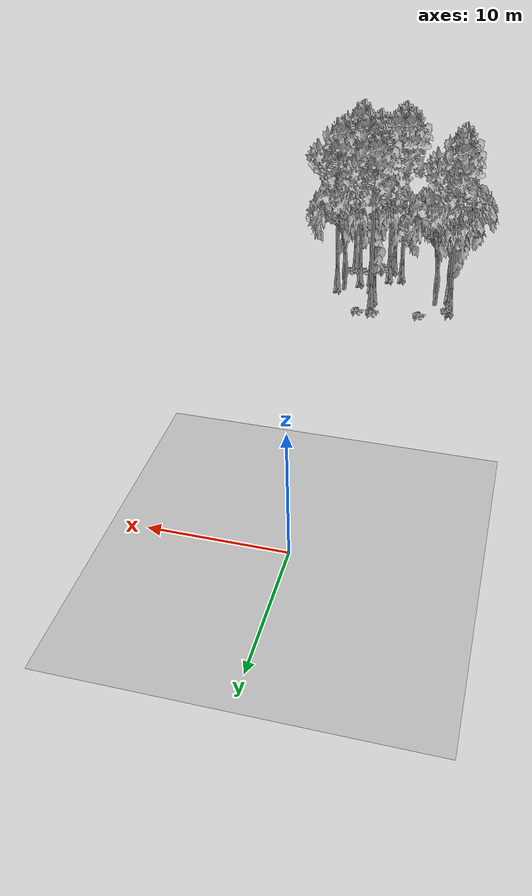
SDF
<sdf version="1.7">
 <world name="default">
  <model name="ground_plane">
   <static>1</static>
   <link name="link">
    <collision name="collision">
     <pose>-50 0 0 0 -0 0</pose>
     <geometry><plane><normal>0 0 1</normal><size>80 80</size></plane></geometry>
     <surface><contact><ode><min_depth>0.01</min_depth><max_vel>0</max_vel></ode></contact></surface>
    </collision>
    <visual name="grass">
     <cast_shadows>0</cast_shadows>
     <geometry>
      <mesh>
       <scale>0.46714285714285714 0.46714285714285714 0.1</scale>
       <uri>file://grass_plane/meshes/grass_plane.dae</uri>
      </mesh>
     </geometry>
    </visual>
   </link>
  </model>
  <model name="Tree 130">
   <static>1</static>
   <pose>-6.377897747362773 -33.0614742757969 0 1.57079 -0 0</pose>
   <link name="link">
    <collision name="collision">
     <geometry><mesh><scale>3.5 5 3.5</scale><uri>model://tree_9/meshes/tree_9.obj</uri></mesh></geometry>
    </collision>
    <visual name="visual">
     <geometry><mesh><scale>3.5 5 3.5</scale><uri>model://tree_9/meshes/tree_9.obj</uri></mesh></geometry>
    </visual>
   </link>
  </model>
  <model name="Tree 139">
   <static>1</static>
   <pose>0.8280871402998287 -33.56340187942965 0 1.57079 -0 0</pose>
   <link name="link">
    <collision name="collision">
     <geometry><mesh><scale>3.5 5 3.5</scale><uri>model://tree_9/meshes/tree_9.obj</uri></mesh></geometry>
    </collision>
    <visual name="visual">
     <geometry><mesh><scale>3.5 5 3.5</scale><uri>model://tree_9/meshes/tree_9.obj</uri></mesh></geometry>
    </visual>
   </link>
  </model>
  <model name="Tree 178">
   <static>1</static>
   <pose>-0.07795094631124755 -39.66457495620024 0 1.57079 -0 0</pose>
   <link name="link">
    <collision name="collision">
     <geometry><mesh><scale>3.5 5 3.5</scale><uri>model://tree_9/meshes/tree_9.obj</uri></mesh></geometry>
    </collision>
    <visual name="visual">
     <geometry><mesh><scale>3.5 5 3.5</scale><uri>model://tree_9/meshes/tree_9.obj</uri></mesh></geometry>
    </visual>
   </link>
  </model>
  <model name="Tree 202">
   <static>1</static>
   <pose>-1.0511369377822035 -38.25991164596257 0 1.57079 -0 0</pose>
   <link name="link">
    <collision name="collision">
     <geometry><mesh><scale>3.5 5 3.5</scale><uri>model://tree_9/meshes/tree_9.obj</uri></mesh></geometry>
    </collision>
    <visual name="visual">
     <geometry><mesh><scale>3.5 5 3.5</scale><uri>model://tree_9/meshes/tree_9.obj</uri></mesh></geometry>
    </visual>
   </link>
  </model>
  <model name="Tree 257">
   <static>1</static>
   <pose>2.7378826099276026 -36.57014905535447 0 1.57079 -0 0</pose>
   <link name="link">
    <collision name="collision">
     <geometry><mesh><scale>3.5 5 3.5</scale><uri>model://tree_9/meshes/tree_9.obj</uri></mesh></geometry>
    </collision>
    <visual name="visual">
     <geometry><mesh><scale>3.5 5 3.5</scale><uri>model://tree_9/meshes/tree_9.obj</uri></mesh></geometry>
    </visual>
   </link>
  </model>
  <model name="Tree 288">
   <static>1</static>
   <pose>4.654760357649913 -35.04532980832681 0 1.57079 -0 0</pose>
   <link name="link">
    <collision name="collision">
     <geometry><mesh><scale>3.5 5 3.5</scale><uri>model://tree_9/meshes/tree_9.obj</uri></mesh></geometry>
    </collision>
    <visual name="visual">
     <geometry><mesh><scale>3.5 5 3.5</scale><uri>model://tree_9/meshes/tree_9.obj</uri></mesh></geometry>
    </visual>
   </link>
  </model>
  <model name="Tree 357">
   <static>1</static>
   <pose>0.8275773958869763 -32.07161638440657 0 1.57079 -0 0</pose>
   <link name="link">
    <collision name="collision">
     <geometry><mesh><scale>3.5 5 3.5</scale><uri>model://tree_9/meshes/tree_9.obj</uri></mesh></geometry>
    </collision>
    <visual name="visual">
     <geometry><mesh><scale>3.5 5 3.5</scale><uri>model://tree_9/meshes/tree_9.obj</uri></mesh></geometry>
    </visual>
   </link>
  </model>
  <model name="Tree 421">
   <static>1</static>
   <pose>1.7865756302840623 -37.137464410207045 0 1.57079 -0 0</pose>
   <link name="link">
    <collision name="collision">
     <geometry><mesh><scale>3.5 5 3.5</scale><uri>model://tree_9/meshes/tree_9.obj</uri></mesh></geometry>
    </collision>
    <visual name="visual">
     <geometry><mesh><scale>3.5 5 3.5</scale><uri>model://tree_9/meshes/tree_9.obj</uri></mesh></geometry>
    </visual>
   </link>
  </model>
  <model name="Tree 465">
   <static>1</static>
   <pose>1.4898975217164008 -35.72123643416438 0 1.57079 -0 0</pose>
   <link name="link">
    <collision name="collision">
     <geometry><mesh><scale>3.5 5 3.5</scale><uri>model://tree_9/meshes/tree_9.obj</uri></mesh></geometry>
    </collision>
    <visual name="visual">
     <geometry><mesh><scale>3.5 5 3.5</scale><uri>model://tree_9/meshes/tree_9.obj</uri></mesh></geometry>
    </visual>
   </link>
  </model>
  <model name="Tree 497">
   <static>1</static>
   <pose>0.12948457581568817 -37.98725501332355 0 1.57079 -0 0</pose>
   <link name="link">
    <collision name="collision">
     <geometry><mesh><scale>3.5 5 3.5</scale><uri>model://tree_9/meshes/tree_9.obj</uri></mesh></geometry>
    </collision>
    <visual name="visual">
     <geometry><mesh><scale>3.5 5 3.5</scale><uri>model://tree_9/meshes/tree_9.obj</uri></mesh></geometry>
    </visual>
   </link>
  </model>
  <model name="Tree 506">
   <static>1</static>
   <pose>3.7221538579052833 -39.200286507392825 0 1.57079 -0 0</pose>
   <link name="link">
    <collision name="collision">
     <geometry><mesh><scale>3.5 5 3.5</scale><uri>model://tree_9/meshes/tree_9.obj</uri></mesh></geometry>
    </collision>
    <visual name="visual">
     <geometry><mesh><scale>3.5 5 3.5</scale><uri>model://tree_9/meshes/tree_9.obj</uri></mesh></geometry>
    </visual>
   </link>
  </model>
  <model name="Tree 536">
   <static>1</static>
   <pose>-5.918908705260549 -36.68558465887627 0 1.57079 -0 0</pose>
   <link name="link">
    <collision name="collision">
     <geometry><mesh><scale>3.5 5 3.5</scale><uri>model://tree_2/meshes/tree_2.obj</uri></mesh></geometry>
    </collision>
    <visual name="visual">
     <geometry><mesh><scale>3.5 5 3.5</scale><uri>model://tree_2/meshes/tree_2.obj</uri></mesh></geometry>
    </visual>
   </link>
  </model>
  <model name="Tree 552">
   <static>1</static>
   <pose>1.1677909019286545 -35.63264811978588 0 1.57079 -0 0</pose>
   <link name="link">
    <collision name="collision">
     <geometry><mesh><scale>3.5 5 3.5</scale><uri>model://tree_2/meshes/tree_2.obj</uri></mesh></geometry>
    </collision>
    <visual name="visual">
     <geometry><mesh><scale>3.5 5 3.5</scale><uri>model://tree_2/meshes/tree_2.obj</uri></mesh></geometry>
    </visual>
   </link>
  </model>
  <model name="Tree 600">
   <static>1</static>
   <pose>3.801400169875528 -34.778483416212886 0 1.57079 -0 0</pose>
   <link name="link">
    <collision name="collision">
     <geometry><mesh><scale>3.5 5 3.5</scale><uri>model://tree_2/meshes/tree_2.obj</uri></mesh></geometry>
    </collision>
    <visual name="visual">
     <geometry><mesh><scale>3.5 5 3.5</scale><uri>model://tree_2/meshes/tree_2.obj</uri></mesh></geometry>
    </visual>
   </link>
  </model>
  <model name="Tree 607">
   <static>1</static>
   <pose>-5.018268164234172 -33.91600815746265 0 1.57079 -0 0</pose>
   <link name="link">
    <collision name="collision">
     <geometry><mesh><scale>3.5 5 3.5</scale><uri>model://tree_2/meshes/tree_2.obj</uri></mesh></geometry>
    </collision>
    <visual name="visual">
     <geometry><mesh><scale>3.5 5 3.5</scale><uri>model://tree_2/meshes/tree_2.obj</uri></mesh></geometry>
    </visual>
   </link>
  </model>
  <model name="Tree 626">
   <static>1</static>
   <pose>-5.959489392442826 -35.58259824528821 0 1.57079 -0 0</pose>
   <link name="link">
    <collision name="collision">
     <geometry><mesh><scale>3.5 5 3.5</scale><uri>model://tree_9/meshes/tree_9.obj</uri></mesh></geometry>
    </collision>
    <visual name="visual">
     <geometry><mesh><scale>3.5 5 3.5</scale><uri>model://tree_9/meshes/tree_9.obj</uri></mesh></geometry>
    </visual>
   </link>
  </model>
  <model name="Bush 136">
   <static>1</static>
   <pose>0.5645446314695661 -31.13156095640629 0 1.57079 -0 0</pose>
   <link name="link">
    <collision name="collision">
     <geometry><mesh><scale>2 2 2</scale><uri>model://bush_2/meshes/bush_2.obj</uri></mesh></geometry>
     <surface><contact><collide_without_contact>false</collide_without_contact></contact></surface>
    </collision>
    <visual name="visual">
     <geometry><mesh><scale>2 2 2</scale><uri>model://bush_2/meshes/bush_2.obj</uri></mesh></geometry>
    </visual>
   </link>
  </model>
  <model name="Bush 201">
   <static>1</static>
   <pose>0.9041195361643233 -37.88651165547631 0 1.57079 -0 0</pose>
   <link name="link">
    <collision name="collision">
     <geometry><mesh><scale>2 2 2</scale><uri>model://bush_0/meshes/bush_0.obj</uri></mesh></geometry>
     <surface><contact><collide_without_contact>false</collide_without_contact></contact></surface>
    </collision>
    <visual name="visual">
     <geometry><mesh><scale>2 2 2</scale><uri>model://bush_0/meshes/bush_0.obj</uri></mesh></geometry>
    </visual>
   </link>
  </model>
  <model name="Bush 300">
   <static>1</static>
   <pose>0.4832973227575934 -30.92641154199668 0 1.57079 -0 0</pose>
   <link name="link">
    <collision name="collision">
     <geometry><mesh><scale>2 2 2</scale><uri>model://bush_2/meshes/bush_2.obj</uri></mesh></geometry>
     <surface><contact><collide_without_contact>false</collide_without_contact></contact></surface>
    </collision>
    <visual name="visual">
     <geometry><mesh><scale>2 2 2</scale><uri>model://bush_2/meshes/bush_2.obj</uri></mesh></geometry>
    </visual>
   </link>
  </model>
  <model name="Bush 329">
   <static>1</static>
   <pose>4.01900080358358 -38.24621107709628 0 1.57079 -0 0</pose>
   <link name="link">
    <collision name="collision">
     <geometry><mesh><scale>2 2 2</scale><uri>model://bush_2/meshes/bush_2.obj</uri></mesh></geometry>
     <surface><contact><collide_without_contact>false</collide_without_contact></contact></surface>
    </collision>
    <visual name="visual">
     <geometry><mesh><scale>2 2 2</scale><uri>model://bush_2/meshes/bush_2.obj</uri></mesh></geometry>
    </visual>
   </link>
  </model>
  <model name="Bush 358">
   <static>1</static>
   <pose>-6.233991829218837 -31.42600755983679 0 1.57079 -0 0</pose>
   <link name="link">
    <collision name="collision">
     <geometry><mesh><scale>2 2 2</scale><uri>model://bush_5/meshes/bush_5.obj</uri></mesh></geometry>
     <surface><contact><collide_without_contact>false</collide_without_contact></contact></surface>
    </collision>
    <visual name="visual">
     <geometry><mesh><scale>2 2 2</scale><uri>model://bush_5/meshes/bush_5.obj</uri></mesh></geometry>
    </visual>
   </link>
  </model>
  <model name="Bush 411">
   <static>1</static>
   <pose>-3.779463764011183 -31.506008936368435 0 1.57079 -0 0</pose>
   <link name="link">
    <collision name="collision">
     <geometry><mesh><scale>2 2 2</scale><uri>model://bush_2/meshes/bush_2.obj</uri></mesh></geometry>
     <surface><contact><collide_without_contact>false</collide_without_contact></contact></surface>
    </collision>
    <visual name="visual">
     <geometry><mesh><scale>2 2 2</scale><uri>model://bush_2/meshes/bush_2.obj</uri></mesh></geometry>
    </visual>
   </link>
  </model>
  <model name="Bush 515">
   <static>1</static>
   <pose>1.8588175163489922 -30.9610331144384 0 1.57079 -0 0</pose>
   <link name="link">
    <collision name="collision">
     <geometry><mesh><scale>2 2 2</scale><uri>model://bush_2/meshes/bush_2.obj</uri></mesh></geometry>
     <surface><contact><collide_without_contact>false</collide_without_contact></contact></surface>
    </collision>
    <visual name="visual">
     <geometry><mesh><scale>2 2 2</scale><uri>model://bush_2/meshes/bush_2.obj</uri></mesh></geometry>
    </visual>
   </link>
  </model>
  <model name="Bush 632">
   <static>1</static>
   <pose>2.6156260216536964 -38.50293798066733 0 1.57079 -0 0</pose>
   <link name="link">
    <collision name="collision">
     <geometry><mesh><scale>2 2 2</scale><uri>model://bush_2/meshes/bush_2.obj</uri></mesh></geometry>
     <surface><contact><collide_without_contact>false</collide_without_contact></contact></surface>
    </collision>
    <visual name="visual">
     <geometry><mesh><scale>2 2 2</scale><uri>model://bush_2/meshes/bush_2.obj</uri></mesh></geometry>
    </visual>
   </link>
  </model>
 </world>
</sdf>
